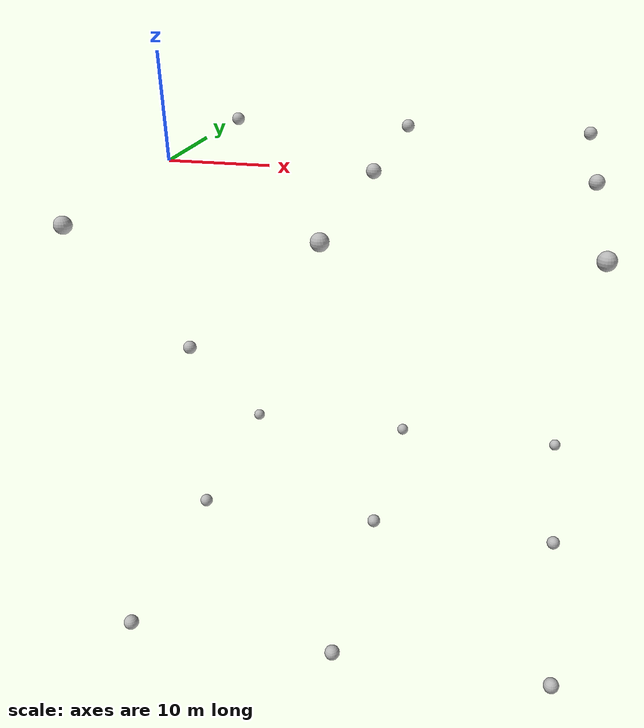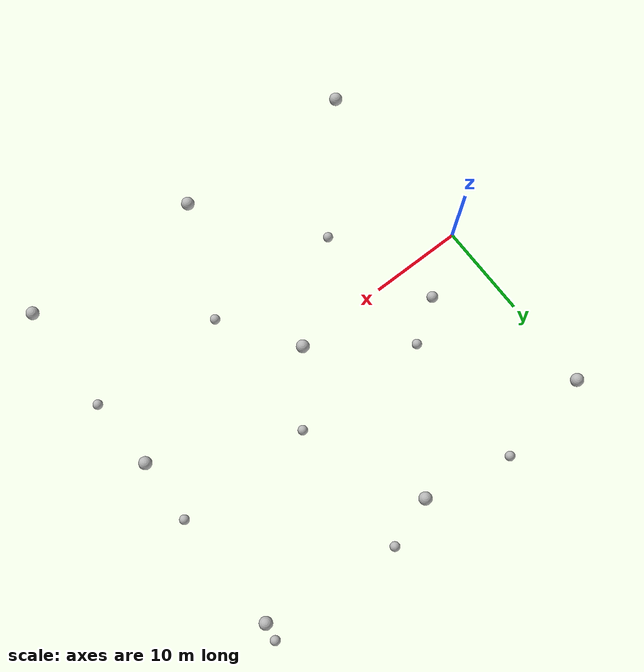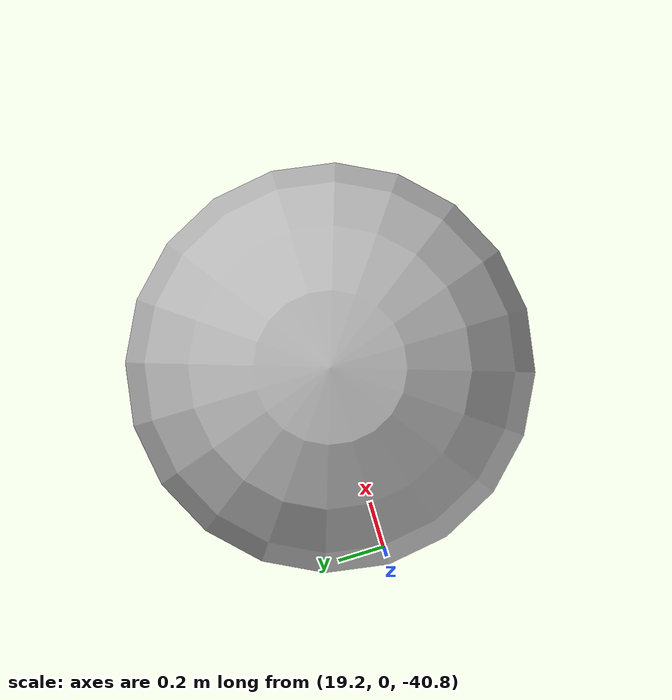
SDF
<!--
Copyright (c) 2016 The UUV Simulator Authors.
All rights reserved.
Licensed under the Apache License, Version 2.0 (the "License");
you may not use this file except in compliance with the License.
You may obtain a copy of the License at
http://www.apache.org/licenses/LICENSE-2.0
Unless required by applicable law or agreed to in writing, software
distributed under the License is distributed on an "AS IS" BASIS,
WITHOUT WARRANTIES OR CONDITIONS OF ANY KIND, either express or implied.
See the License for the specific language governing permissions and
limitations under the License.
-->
<sdf version="1.4">
 <world name="map">
  <physics name="default_physics" default="true" type="ode">
   <max_step_size>0.1</max_step_size>
   <real_time_factor>1</real_time_factor>
   <real_time_update_rate>10</real_time_update_rate>
   <ode><solver><type>quick</type><iters>20</iters><sor>1.4</sor></solver></ode>
  </physics>
  <gravity>0 0 0</gravity>
  <scene>
   <ambient>0.01 0.01 0.01 1.0</ambient>
   <sky><clouds><speed>12</speed></clouds></sky>
   <shadows>1</shadows>
  </scene>
  <model name="sphere_1">
   <pose>0 0 -20 0 0 0</pose>
   <link name="link">
    <collision name="collision"><geometry><sphere><radius>1</radius></sphere></geometry></collision>
    <visual name="visual"><geometry><sphere><radius>0.7</radius></sphere></geometry></visual>
   </link>
   <plugin name="usbl_transceiver" filename="libtransceiverPlugin.so">
    <namespace>USBL</namespace>
    <transponder_device>trasnponder_manufacturer</transponder_device>
    <transponder_ID>1</transponder_ID>
    <transceiver_device>tranceiver_manufacturer</transceiver_device>
    <transceiver_ID>168</transceiver_ID>
    <enable_ping_scheduler>false</enable_ping_scheduler>
    <transponder_attached_object>sphere</transponder_attached_object>
   </plugin>
   <plugin name="usbl_transponder" filename="libtransponderPlugin.so">
    <namespace>USBL</namespace>
    <transponder_device>trasnponder_manufacturer</transponder_device>
    <transponder_ID>1</transponder_ID>
    <transceiver_device>tranceiver_manufacturer</transceiver_device>
    <transceiver_ID>168</transceiver_ID>
    <mu>0</mu>
    <sigma>0.0</sigma>
   </plugin>
  </model>
  <model name="sphere_2">
   <pose>0 20 0 0 0 0</pose>
   <link name="link">
    <collision name="collision"><geometry><sphere><radius>1</radius></sphere></geometry></collision>
    <visual name="visual"><geometry><sphere><radius>0.7</radius></sphere></geometry></visual>
   </link>
   <plugin name="usbl_transceiver" filename="libtransceiverPlugin.so">
    <namespace>USBL</namespace>
    <transponder_device>trasnponder_manufacturer</transponder_device>
    <transponder_ID>1</transponder_ID>
    <transceiver_device>tranceiver_manufacturer</transceiver_device>
    <transceiver_ID>168</transceiver_ID>
    <enable_ping_scheduler>false</enable_ping_scheduler>
    <transponder_attached_object>sphere</transponder_attached_object>
   </plugin>
   <plugin name="usbl_transponder" filename="libtransponderPlugin.so">
    <namespace>USBL</namespace>
    <transponder_device>trasnponder_manufacturer</transponder_device>
    <transponder_ID>1</transponder_ID>
    <transceiver_device>tranceiver_manufacturer</transceiver_device>
    <transceiver_ID>168</transceiver_ID>
    <mu>0</mu>
    <sigma>0.0</sigma>
   </plugin>
  </model>
  <model name="sphere_3">
   <pose>20 0 0 0 0 0</pose>
   <link name="link">
    <collision name="collision"><geometry><sphere><radius>1</radius></sphere></geometry></collision>
    <visual name="visual"><geometry><sphere><radius>0.7</radius></sphere></geometry></visual>
   </link>
   <plugin name="usbl_transceiver" filename="libtransceiverPlugin.so">
    <namespace>USBL</namespace>
    <transponder_device>trasnponder_manufacturer</transponder_device>
    <transponder_ID>1</transponder_ID>
    <transceiver_device>tranceiver_manufacturer</transceiver_device>
    <transceiver_ID>168</transceiver_ID>
    <enable_ping_scheduler>false</enable_ping_scheduler>
    <transponder_attached_object>sphere</transponder_attached_object>
   </plugin>
   <plugin name="usbl_transponder" filename="libtransponderPlugin.so">
    <namespace>USBL</namespace>
    <transponder_device>trasnponder_manufacturer</transponder_device>
    <transponder_ID>1</transponder_ID>
    <transceiver_device>tranceiver_manufacturer</transceiver_device>
    <transceiver_ID>168</transceiver_ID>
    <mu>0</mu>
    <sigma>0.0</sigma>
   </plugin>
  </model>
  <model name="sphere_4">
   <pose>20 20 0 0 0 0</pose>
   <link name="link">
    <collision name="collision"><geometry><sphere><radius>1</radius></sphere></geometry></collision>
    <visual name="visual"><geometry><sphere><radius>0.7</radius></sphere></geometry></visual>
   </link>
   <plugin name="usbl_transceiver" filename="libtransceiverPlugin.so">
    <namespace>USBL</namespace>
    <transponder_device>trasnponder_manufacturer</transponder_device>
    <transponder_ID>1</transponder_ID>
    <transceiver_device>tranceiver_manufacturer</transceiver_device>
    <transceiver_ID>168</transceiver_ID>
    <enable_ping_scheduler>false</enable_ping_scheduler>
    <transponder_attached_object>sphere</transponder_attached_object>
   </plugin>
   <plugin name="usbl_transponder" filename="libtransponderPlugin.so">
    <namespace>USBL</namespace>
    <transponder_device>trasnponder_manufacturer</transponder_device>
    <transponder_ID>1</transponder_ID>
    <transceiver_device>tranceiver_manufacturer</transceiver_device>
    <transceiver_ID>168</transceiver_ID>
    <mu>0</mu>
    <sigma>0.0</sigma>
   </plugin>
  </model>
  <model name="sphere_5">
   <pose>40 0 0 0 0 0</pose>
   <link name="link">
    <collision name="collision"><geometry><sphere><radius>1</radius></sphere></geometry></collision>
    <visual name="visual"><geometry><sphere><radius>0.7</radius></sphere></geometry></visual>
   </link>
   <plugin name="usbl_transceiver" filename="libtransceiverPlugin.so">
    <namespace>USBL</namespace>
    <transponder_device>trasnponder_manufacturer</transponder_device>
    <transponder_ID>1</transponder_ID>
    <transceiver_device>tranceiver_manufacturer</transceiver_device>
    <transceiver_ID>168</transceiver_ID>
    <enable_ping_scheduler>false</enable_ping_scheduler>
    <transponder_attached_object>sphere</transponder_attached_object>
   </plugin>
   <plugin name="usbl_transponder" filename="libtransponderPlugin.so">
    <namespace>USBL</namespace>
    <transponder_device>trasnponder_manufacturer</transponder_device>
    <transponder_ID>1</transponder_ID>
    <transceiver_device>tranceiver_manufacturer</transceiver_device>
    <transceiver_ID>168</transceiver_ID>
    <mu>0</mu>
    <sigma>0.0</sigma>
   </plugin>
  </model>
  <model name="sphere_6">
   <pose>40 20 0 0 0 0</pose>
   <link name="link">
    <collision name="collision"><geometry><sphere><radius>1</radius></sphere></geometry></collision>
    <visual name="visual"><geometry><sphere><radius>0.7</radius></sphere></geometry></visual>
   </link>
   <plugin name="usbl_transceiver" filename="libtransceiverPlugin.so">
    <namespace>USBL</namespace>
    <transponder_device>trasnponder_manufacturer</transponder_device>
    <transponder_ID>1</transponder_ID>
    <transceiver_device>tranceiver_manufacturer</transceiver_device>
    <transceiver_ID>168</transceiver_ID>
    <enable_ping_scheduler>false</enable_ping_scheduler>
    <transponder_attached_object>sphere</transponder_attached_object>
   </plugin>
   <plugin name="usbl_transponder" filename="libtransponderPlugin.so">
    <namespace>USBL</namespace>
    <transponder_device>trasnponder_manufacturer</transponder_device>
    <transponder_ID>1</transponder_ID>
    <transceiver_device>tranceiver_manufacturer</transceiver_device>
    <transceiver_ID>168</transceiver_ID>
    <mu>0</mu>
    <sigma>0.0</sigma>
   </plugin>
  </model>
  <model name="sphere_7">
   <pose>0 -20 0 0 0 0</pose>
   <link name="link">
    <collision name="collision"><geometry><sphere><radius>1</radius></sphere></geometry></collision>
    <visual name="visual"><geometry><sphere><radius>0.7</radius></sphere></geometry></visual>
   </link>
   <plugin name="usbl_transceiver" filename="libtransceiverPlugin.so">
    <namespace>USBL</namespace>
    <transponder_device>trasnponder_manufacturer</transponder_device>
    <transponder_ID>1</transponder_ID>
    <transceiver_device>tranceiver_manufacturer</transceiver_device>
    <transceiver_ID>168</transceiver_ID>
    <enable_ping_scheduler>false</enable_ping_scheduler>
    <transponder_attached_object>sphere</transponder_attached_object>
   </plugin>
   <plugin name="usbl_transponder" filename="libtransponderPlugin.so">
    <namespace>USBL</namespace>
    <transponder_device>trasnponder_manufacturer</transponder_device>
    <transponder_ID>1</transponder_ID>
    <transceiver_device>tranceiver_manufacturer</transceiver_device>
    <transceiver_ID>168</transceiver_ID>
    <mu>0</mu>
    <sigma>0.0</sigma>
   </plugin>
  </model>
  <model name="sphere_8">
   <pose>20 -20 0 0 0 0</pose>
   <link name="link">
    <collision name="collision"><geometry><sphere><radius>1</radius></sphere></geometry></collision>
    <visual name="visual"><geometry><sphere><radius>0.7</radius></sphere></geometry></visual>
   </link>
   <plugin name="usbl_transceiver" filename="libtransceiverPlugin.so">
    <namespace>USBL</namespace>
    <transponder_device>trasnponder_manufacturer</transponder_device>
    <transponder_ID>1</transponder_ID>
    <transceiver_device>tranceiver_manufacturer</transceiver_device>
    <transceiver_ID>168</transceiver_ID>
    <enable_ping_scheduler>false</enable_ping_scheduler>
    <transponder_attached_object>sphere</transponder_attached_object>
   </plugin>
   <plugin name="usbl_transponder" filename="libtransponderPlugin.so">
    <namespace>USBL</namespace>
    <transponder_device>trasnponder_manufacturer</transponder_device>
    <transponder_ID>1</transponder_ID>
    <transceiver_device>tranceiver_manufacturer</transceiver_device>
    <transceiver_ID>168</transceiver_ID>
    <mu>0</mu>
    <sigma>0.0</sigma>
   </plugin>
  </model>
  <model name="sphere_9">
   <pose>40 -20 0 0 0 0</pose>
   <link name="link">
    <collision name="collision"><geometry><sphere><radius>1</radius></sphere></geometry></collision>
    <visual name="visual"><geometry><sphere><radius>0.7</radius></sphere></geometry></visual>
   </link>
   <plugin name="usbl_transceiver" filename="libtransceiverPlugin.so">
    <namespace>USBL</namespace>
    <transponder_device>trasnponder_manufacturer</transponder_device>
    <transponder_ID>1</transponder_ID>
    <transceiver_device>tranceiver_manufacturer</transceiver_device>
    <transceiver_ID>168</transceiver_ID>
    <enable_ping_scheduler>false</enable_ping_scheduler>
    <transponder_attached_object>sphere</transponder_attached_object>
   </plugin>
   <plugin name="usbl_transponder" filename="libtransponderPlugin.so">
    <namespace>USBL</namespace>
    <transponder_device>trasnponder_manufacturer</transponder_device>
    <transponder_ID>1</transponder_ID>
    <transceiver_device>tranceiver_manufacturer</transceiver_device>
    <transceiver_ID>168</transceiver_ID>
    <mu>0</mu>
    <sigma>0.0</sigma>
   </plugin>
  </model>
  <model name="sphere_10">
   <pose>0 0 -40 0 0 0</pose>
   <link name="link">
    <collision name="collision"><geometry><sphere><radius>1</radius></sphere></geometry></collision>
    <visual name="visual"><geometry><sphere><radius>0.7</radius></sphere></geometry></visual>
   </link>
   <plugin name="usbl_transceiver" filename="libtransceiverPlugin.so">
    <namespace>USBL</namespace>
    <transponder_device>trasnponder_manufacturer</transponder_device>
    <transponder_ID>1</transponder_ID>
    <transceiver_device>tranceiver_manufacturer</transceiver_device>
    <transceiver_ID>168</transceiver_ID>
    <enable_ping_scheduler>false</enable_ping_scheduler>
    <transponder_attached_object>sphere</transponder_attached_object>
   </plugin>
   <plugin name="usbl_transponder" filename="libtransponderPlugin.so">
    <namespace>USBL</namespace>
    <transponder_device>trasnponder_manufacturer</transponder_device>
    <transponder_ID>1</transponder_ID>
    <transceiver_device>tranceiver_manufacturer</transceiver_device>
    <transceiver_ID>168</transceiver_ID>
    <mu>0</mu>
    <sigma>0.0</sigma>
   </plugin>
  </model>
  <model name="sphere_11">
   <pose>0 20 -40 0 0 0</pose>
   <link name="link">
    <collision name="collision"><geometry><sphere><radius>1</radius></sphere></geometry></collision>
    <visual name="visual"><geometry><sphere><radius>0.7</radius></sphere></geometry></visual>
   </link>
   <plugin name="usbl_transceiver" filename="libtransceiverPlugin.so">
    <namespace>USBL</namespace>
    <transponder_device>trasnponder_manufacturer</transponder_device>
    <transponder_ID>1</transponder_ID>
    <transceiver_device>tranceiver_manufacturer</transceiver_device>
    <transceiver_ID>168</transceiver_ID>
    <enable_ping_scheduler>false</enable_ping_scheduler>
    <transponder_attached_object>sphere</transponder_attached_object>
   </plugin>
   <plugin name="usbl_transponder" filename="libtransponderPlugin.so">
    <namespace>USBL</namespace>
    <transponder_device>trasnponder_manufacturer</transponder_device>
    <transponder_ID>1</transponder_ID>
    <transceiver_device>tranceiver_manufacturer</transceiver_device>
    <transceiver_ID>168</transceiver_ID>
    <mu>0</mu>
    <sigma>0.0</sigma>
   </plugin>
  </model>
  <model name="sphere_12">
   <pose>20 0 -40 0 0 0</pose>
   <link name="link">
    <collision name="collision"><geometry><sphere><radius>1</radius></sphere></geometry></collision>
    <visual name="visual"><geometry><sphere><radius>0.7</radius></sphere></geometry></visual>
   </link>
   <plugin name="usbl_transceiver" filename="libtransceiverPlugin.so">
    <namespace>USBL</namespace>
    <transponder_device>trasnponder_manufacturer</transponder_device>
    <transponder_ID>1</transponder_ID>
    <transceiver_device>tranceiver_manufacturer</transceiver_device>
    <transceiver_ID>168</transceiver_ID>
    <enable_ping_scheduler>false</enable_ping_scheduler>
    <transponder_attached_object>sphere</transponder_attached_object>
   </plugin>
   <plugin name="usbl_transponder" filename="libtransponderPlugin.so">
    <namespace>USBL</namespace>
    <transponder_device>trasnponder_manufacturer</transponder_device>
    <transponder_ID>1</transponder_ID>
    <transceiver_device>tranceiver_manufacturer</transceiver_device>
    <transceiver_ID>168</transceiver_ID>
    <mu>0</mu>
    <sigma>0.0</sigma>
   </plugin>
  </model>
  <model name="sphere_13">
   <pose>20 20 -40 0 0 0</pose>
   <link name="link">
    <collision name="collision"><geometry><sphere><radius>1</radius></sphere></geometry></collision>
    <visual name="visual"><geometry><sphere><radius>0.7</radius></sphere></geometry></visual>
   </link>
   <plugin name="usbl_transceiver" filename="libtransceiverPlugin.so">
    <namespace>USBL</namespace>
    <transponder_device>trasnponder_manufacturer</transponder_device>
    <transponder_ID>1</transponder_ID>
    <transceiver_device>tranceiver_manufacturer</transceiver_device>
    <transceiver_ID>168</transceiver_ID>
    <enable_ping_scheduler>false</enable_ping_scheduler>
    <transponder_attached_object>sphere</transponder_attached_object>
   </plugin>
   <plugin name="usbl_transponder" filename="libtransponderPlugin.so">
    <namespace>USBL</namespace>
    <transponder_device>trasnponder_manufacturer</transponder_device>
    <transponder_ID>1</transponder_ID>
    <transceiver_device>tranceiver_manufacturer</transceiver_device>
    <transceiver_ID>168</transceiver_ID>
    <mu>0</mu>
    <sigma>0.0</sigma>
   </plugin>
  </model>
  <model name="sphere_14">
   <pose>40 0 -40 0 0 0</pose>
   <link name="link">
    <collision name="collision"><geometry><sphere><radius>1</radius></sphere></geometry></collision>
    <visual name="visual"><geometry><sphere><radius>0.7</radius></sphere></geometry></visual>
   </link>
   <plugin name="usbl_transceiver" filename="libtransceiverPlugin.so">
    <namespace>USBL</namespace>
    <transponder_device>trasnponder_manufacturer</transponder_device>
    <transponder_ID>1</transponder_ID>
    <transceiver_device>tranceiver_manufacturer</transceiver_device>
    <transceiver_ID>168</transceiver_ID>
    <enable_ping_scheduler>false</enable_ping_scheduler>
    <transponder_attached_object>sphere</transponder_attached_object>
   </plugin>
   <plugin name="usbl_transponder" filename="libtransponderPlugin.so">
    <namespace>USBL</namespace>
    <transponder_device>trasnponder_manufacturer</transponder_device>
    <transponder_ID>1</transponder_ID>
    <transceiver_device>tranceiver_manufacturer</transceiver_device>
    <transceiver_ID>168</transceiver_ID>
    <mu>0</mu>
    <sigma>0.0</sigma>
   </plugin>
  </model>
  <model name="sphere_15">
   <pose>40 20 -40 0 0 0</pose>
   <link name="link">
    <collision name="collision"><geometry><sphere><radius>1</radius></sphere></geometry></collision>
    <visual name="visual"><geometry><sphere><radius>0.7</radius></sphere></geometry></visual>
   </link>
   <plugin name="usbl_transceiver" filename="libtransceiverPlugin.so">
    <namespace>USBL</namespace>
    <transponder_device>trasnponder_manufacturer</transponder_device>
    <transponder_ID>1</transponder_ID>
    <transceiver_device>tranceiver_manufacturer</transceiver_device>
    <transceiver_ID>168</transceiver_ID>
    <enable_ping_scheduler>false</enable_ping_scheduler>
    <transponder_attached_object>sphere</transponder_attached_object>
   </plugin>
   <plugin name="usbl_transponder" filename="libtransponderPlugin.so">
    <namespace>USBL</namespace>
    <transponder_device>trasnponder_manufacturer</transponder_device>
    <transponder_ID>1</transponder_ID>
    <transceiver_device>tranceiver_manufacturer</transceiver_device>
    <transceiver_ID>168</transceiver_ID>
    <mu>0</mu>
    <sigma>0.0</sigma>
   </plugin>
  </model>
  <model name="sphere_16">
   <pose>0 -20 -40 0 0 0</pose>
   <link name="link">
    <collision name="collision"><geometry><sphere><radius>1</radius></sphere></geometry></collision>
    <visual name="visual"><geometry><sphere><radius>0.7</radius></sphere></geometry></visual>
   </link>
   <plugin name="usbl_transceiver" filename="libtransceiverPlugin.so">
    <namespace>USBL</namespace>
    <transponder_device>trasnponder_manufacturer</transponder_device>
    <transponder_ID>1</transponder_ID>
    <transceiver_device>tranceiver_manufacturer</transceiver_device>
    <transceiver_ID>168</transceiver_ID>
    <enable_ping_scheduler>false</enable_ping_scheduler>
    <transponder_attached_object>sphere</transponder_attached_object>
   </plugin>
   <plugin name="usbl_transponder" filename="libtransponderPlugin.so">
    <namespace>USBL</namespace>
    <transponder_device>trasnponder_manufacturer</transponder_device>
    <transponder_ID>1</transponder_ID>
    <transceiver_device>tranceiver_manufacturer</transceiver_device>
    <transceiver_ID>168</transceiver_ID>
    <mu>0</mu>
    <sigma>0.0</sigma>
   </plugin>
  </model>
  <model name="sphere_17">
   <pose>20 -20 -40 0 0 0</pose>
   <link name="link">
    <collision name="collision"><geometry><sphere><radius>1</radius></sphere></geometry></collision>
    <visual name="visual"><geometry><sphere><radius>0.7</radius></sphere></geometry></visual>
   </link>
   <plugin name="usbl_transceiver" filename="libtransceiverPlugin.so">
    <namespace>USBL</namespace>
    <transponder_device>trasnponder_manufacturer</transponder_device>
    <transponder_ID>1</transponder_ID>
    <transceiver_device>tranceiver_manufacturer</transceiver_device>
    <transceiver_ID>168</transceiver_ID>
    <enable_ping_scheduler>false</enable_ping_scheduler>
    <transponder_attached_object>sphere</transponder_attached_object>
   </plugin>
   <plugin name="usbl_transponder" filename="libtransponderPlugin.so">
    <namespace>USBL</namespace>
    <transponder_device>trasnponder_manufacturer</transponder_device>
    <transponder_ID>1</transponder_ID>
    <transceiver_device>tranceiver_manufacturer</transceiver_device>
    <transceiver_ID>168</transceiver_ID>
    <mu>0</mu>
    <sigma>0.0</sigma>
   </plugin>
  </model>
  <model name="sphere_18">
   <pose>40 -20 -40 0 0 0</pose>
   <link name="link">
    <collision name="collision"><geometry><sphere><radius>1</radius></sphere></geometry></collision>
    <visual name="visual"><geometry><sphere><radius>0.7</radius></sphere></geometry></visual>
   </link>
   <plugin name="usbl_transceiver" filename="libtransceiverPlugin.so">
    <namespace>USBL</namespace>
    <transponder_device>trasnponder_manufacturer</transponder_device>
    <transponder_ID>1</transponder_ID>
    <transceiver_device>tranceiver_manufacturer</transceiver_device>
    <transceiver_ID>168</transceiver_ID>
    <enable_ping_scheduler>false</enable_ping_scheduler>
    <transponder_attached_object>sphere</transponder_attached_object>
   </plugin>
   <plugin name="usbl_transponder" filename="libtransponderPlugin.so">
    <namespace>USBL</namespace>
    <transponder_device>trasnponder_manufacturer</transponder_device>
    <transponder_ID>1</transponder_ID>
    <transceiver_device>tranceiver_manufacturer</transceiver_device>
    <transceiver_ID>168</transceiver_ID>
    <mu>0</mu>
    <sigma>0.0</sigma>
   </plugin>
  </model>
  <spherical_coordinates>
   <latitude_deg>56.71897669633431</latitude_deg>
   <longitude_deg>3.515625</longitude_deg>
  </spherical_coordinates>
  <light type="directional" name="sun1">
   <pose>50 0 150 0 0 0</pose>
   <diffuse>1 1 1 1</diffuse>
   <specular>.1 .1 .1 1</specular>
   <direction>0.3 0.3 -1</direction>
   <cast_shadows>false</cast_shadows>
  </light>
  <light type="directional" name="sun_diffuse">
   <pose>-50 0 -150 0 0 0</pose>
   <diffuse>0.6 0.6 0.6 1</diffuse>
   <specular>0 0 0 1</specular>
   <direction>-0.3 -0.3 -1</direction>
   <cast_shadows>false</cast_shadows>
  </light>
  <plugin name="underwater_current_plugin" filename="libdave_ocean_current_plugin.so">
   <namespace>hydrodynamics</namespace>
   <constant_current>
    <topic>current_velocity</topic>
    <velocity><mean>0</mean><min>0</min><max>5</max><mu>0.0</mu><noiseAmp>0.0</noiseAmp></velocity>
    <horizontal_angle>
     <mean>0</mean>
     <min>-3.141592653589793238</min>
     <max>3.141592653589793238</max>
     <mu>0.0</mu>
     <noiseAmp>0.0</noiseAmp>
    </horizontal_angle>
    <vertical_angle>
     <mean>0</mean>
     <min>-3.141592653589793238</min>
     <max>3.141592653589793238</max>
     <mu>0.0</mu>
     <noiseAmp>0.0</noiseAmp>
    </vertical_angle>
   </constant_current>
   <transient_current>
    <topic_stratified_database>stratified_current_velocity_database</topic_stratified_database>
    <databasefilePath>transientOceanCurrentDatabase.csv</databasefilePath>
   </transient_current>
   <tidal_oscillation>
    <databasefilePath>ACT1951_1_Annual_2021.csv</databasefilePath>
    <mean_direction><ebb>69</ebb><flood>255</flood></mean_direction>
    <world_start_time_GMT>
     <day>4</day>
     <month>3</month>
     <year>2021</year>
     <hour>15</hour>
     <minute>0</minute>
    </world_start_time_GMT>
   </tidal_oscillation>
  </plugin>
  <plugin name="sc_interface" filename="libuuv_sc_ros_interface_plugin.so"/>
 </world>
</sdf>
